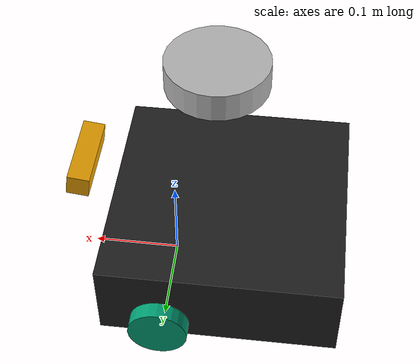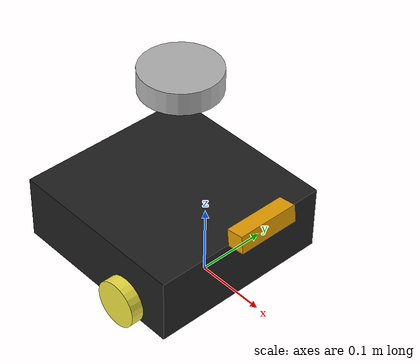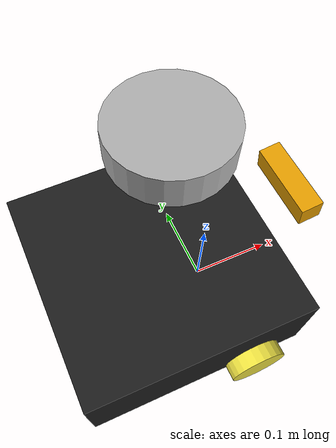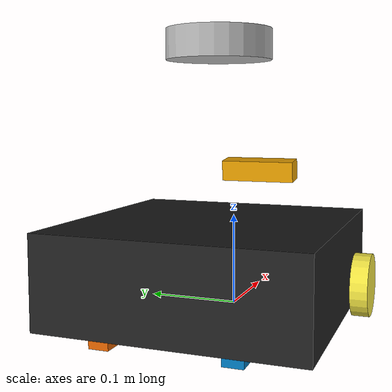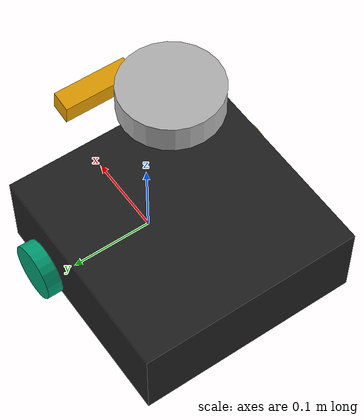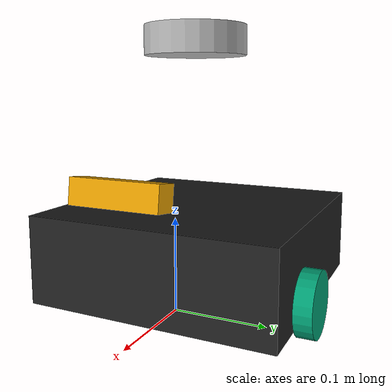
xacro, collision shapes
<?xml version="1.0" ?>
<robot name="turtlebot3_waffle" xmlns:xacro="http://ros.org/wiki/xacro">
  <xacro:include filename="$(find turtlebot3_description)/urdf/common_properties.xacro"/>
  <xacro:include filename="$(find turtlebot3_description)/urdf/turtlebot3_waffle.gazebo.xacro"/>

  <xacro:property name="r200_cam_rgb_px" value="0.005"/>
  <xacro:property name="r200_cam_rgb_py" value="0.018"/>
  <xacro:property name="r200_cam_rgb_pz" value="0.013"/>
  <xacro:property name="r200_cam_depth_offset" value="0.01"/>

  <property name="M_PI" value="3.14159274"/>

  <link name="base_footprint"/>

  <joint name="base_joint" type="fixed">
    <parent link="base_footprint"/>
    <child link="base_link" />
    <origin xyz="0 0 0.010" rpy="0 0 0"/>
  </joint>

  <link name="base_link">
    <visual>
      <origin xyz="-0.064 0 0.0" rpy="0 0 0"/>
      <geometry>
        <mesh filename="package://turtlebot3_description/meshes/bases/waffle_base.stl" scale="0.001 0.001 0.001"/>
      </geometry>
      <material name="light_black"/>
    </visual>

    <collision>
      <origin xyz="-0.064 0 0.047" rpy="0 0 0"/>
      <geometry>
        <box size="0.266 0.266 0.094"/>
      </geometry>
    </collision>

    <inertial>
      <origin xyz="0 0 0" rpy="0 0 0"/>
      <mass value="1.3729096e+00"/>
      <inertia ixx="8.7002718e-03" ixy="-4.7576583e-05" ixz="1.1160499e-04"
               iyy="8.6195418e-03" iyz="-3.5422299e-06"
               izz="1.4612727e-02" />
    </inertial>
  </link>

  <joint name="wheel_left_joint" type="continuous">
    <parent link="base_link"/>
    <child link="wheel_left_link"/>
    <origin xyz="0.0 0.144 0.023" rpy="-1.57 0 0"/>
    <axis xyz="0 0 1"/>
  </joint>

  <link name="wheel_left_link">
    <visual>
      <origin xyz="0 0 0" rpy="1.57 0 0"/>
      <geometry>
        <mesh filename="package://turtlebot3_description/meshes/wheels/left_tire.stl" scale="0.001 0.001 0.001"/>
      </geometry>
      <material name="dark"/>
    </visual>

    <collision>
      <origin xyz="0 0 0" rpy="0 0 0"/>
      <geometry>
        <cylinder length="0.018" radius="0.033"/>
      </geometry>
    </collision>

    <inertial>
      <origin xyz="0 0 0" />
      <mass value="2.8498940e-02" />
      <inertia ixx="1.1175580e-05" ixy="-4.2369783e-11" ixz="-5.9381719e-09"
               iyy="1.1192413e-05" iyz="-1.4400107e-11"
               izz="2.0712558e-05" />
      </inertial>
  </link>

  <joint name="wheel_right_joint" type="continuous">
    <parent link="base_link"/>
    <child link="wheel_right_link"/>
    <origin xyz="0.0 -0.144 0.023" rpy="-1.57 0 0"/>
    <axis xyz="0 0 1"/>
  </joint>

  <link name="wheel_right_link">
    <visual>
      <origin xyz="0 0 0" rpy="1.57 0 0"/>
      <geometry>
        <mesh filename="package://turtlebot3_description/meshes/wheels/right_tire.stl" scale="0.001 0.001 0.001"/>
      </geometry>
      <material name="dark"/>
    </visual>

    <collision>
      <origin xyz="0 0 0" rpy="0 0 0"/>
      <geometry>
        <cylinder length="0.018" radius="0.033"/>
      </geometry>
    </collision>

    <inertial>
      <origin xyz="0 0 0" />
      <mass value="2.8498940e-02" />
      <inertia ixx="1.1175580e-05" ixy="-4.2369783e-11" ixz="-5.9381719e-09"
               iyy="1.1192413e-05" iyz="-1.4400107e-11"
               izz="2.0712558e-05" />
      </inertial>
  </link>

  <joint name="caster_back_right_joint" type="fixed">
    <parent link="base_link"/>
    <child link="caster_back_right_link"/>
    <origin xyz="-0.177 -0.064 -0.004" rpy="-1.57 0 0"/>
  </joint>

  <link name="caster_back_right_link">
    <collision>
      <origin xyz="0 0.001 0" rpy="0 0 0"/>
      <geometry>
        <box size="0.030 0.009 0.020"/>
      </geometry>
    </collision>

    <inertial>
      <origin xyz="0 0 0" />
      <mass value="0.005" />
      <inertia ixx="0.001" ixy="0.0" ixz="0.0"
               iyy="0.001" iyz="0.0"
               izz="0.001" />
    </inertial>
  </link>

  <joint name="caster_back_left_joint" type="fixed">
    <parent link="base_link"/>
    <child link="caster_back_left_link"/>
    <origin xyz="-0.177 0.064 -0.004" rpy="-1.57 0 0"/>
  </joint>

  <link name="caster_back_left_link">
    <collision>
      <origin xyz="0 0.001 0" rpy="0 0 0"/>
      <geometry>
        <box size="0.030 0.009 0.020"/>
      </geometry>
    </collision>

    <inertial>
      <origin xyz="0 0 0" />
      <mass value="0.005" />
      <inertia ixx="0.001" ixy="0.0" ixz="0.0"
               iyy="0.001" iyz="0.0"
               izz="0.001" />
    </inertial>
  </link>

  <joint name="imu_joint" type="fixed">
    <parent link="base_link"/>
    <child link="imu_link"/>
    <origin xyz="0.0 0 0.068" rpy="0 0 0"/>
  </joint>

  <link name="imu_link"/>

  <joint name="scan_joint" type="fixed">
    <parent link="base_link"/>
    <child link="base_scan"/>
    <origin xyz="-0.064 0 0.280" rpy="0 0 0"/>
  </joint>

  <link name="base_scan">
    <visual>
      <origin xyz="0 0 0" rpy="0 0 0"/>
      <geometry>
        <mesh filename="package://turtlebot3_description/meshes/sensors/lds.stl" scale="0.001 0.001 0.001"/>
      </geometry>
      <material name="dark"/>
    </visual>

    <collision>
      <origin xyz="0.015 0 -0.0065" rpy="0 0 0"/>
      <geometry>
        <cylinder length="0.0315" radius="0.055"/>
      </geometry>
    </collision>

    <inertial>
      <mass value="0.114" />
      <origin xyz="0 0 0" />
      <inertia ixx="0.001" ixy="0.0" ixz="0.0"
               iyy="0.001" iyz="0.0"
               izz="0.001" />
    </inertial>
  </link>

  <joint name="camera_joint" type="fixed">
    <origin xyz="0.100 0 0.133" rpy="0 ${-7.7*M_PI/180} 0"/>
    <parent link="base_link"/>
    <child link="camera_link"/>
  </joint>

  <link name="camera_link">

    <visual>
     <origin xyz="0 0 0" rpy="1.57 0 1.57"/>
      <geometry>
       <mesh filename="package://realsense2_camera/meshes/d435.dae" />
      </geometry>
    </visual>

    <collision>
      <origin xyz="0 0 0" rpy="0 0 0"/>
      <geometry>
        <box size="0.025 0.090 0.025"/>
      </geometry>
    </collision>

    <!-- This inertial field needs doesn't contain reliable data!! -->
  </link>
</robot>
